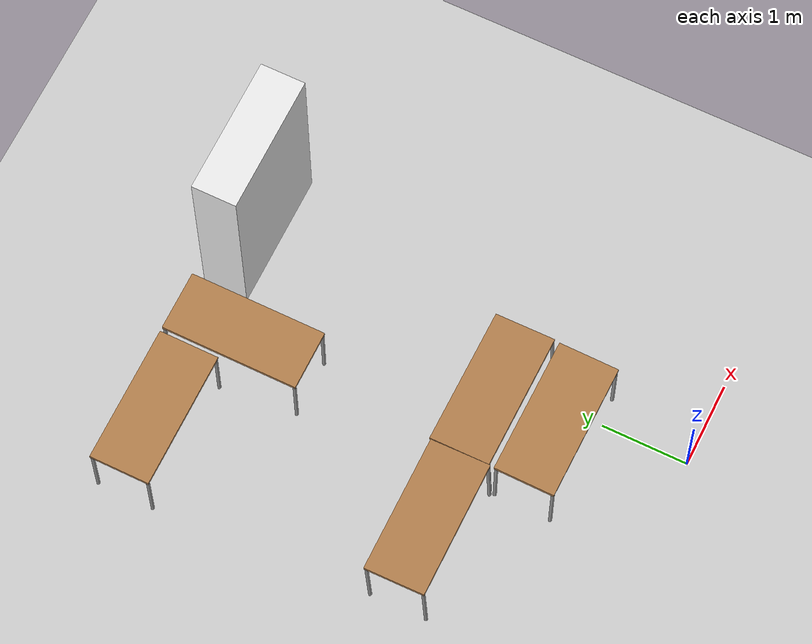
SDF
<sdf version="1.6">
 <world name="Clf Furnished">
  <model name="ground_plane">
   <static>1</static>
   <link name="link">
    <collision name="collision">
     <geometry><plane><normal>0 0 1</normal><size>100 100</size></plane></geometry>
     <surface><friction><ode><mu>100</mu><mu2>50</mu2></ode></friction></surface>
    </collision>
    <visual name="visual">
     <cast_shadows>0</cast_shadows>
     <geometry><plane><normal>0 0 1</normal><size>100 100</size></plane></geometry>
     <material>
      <script><uri>file://media/materials/scripts/gazebo.material</uri><name>Gazebo/Grey</name></script>
     </material>
    </visual>
   </link>
  </model>
  <model name="table_mod_2">
   <link name="link">
    <inertial>
     <inertia><ixx>1</ixx><ixy>0</ixy><ixz>0</ixz><iyy>1</iyy><iyz>0</iyz><izz>1</izz></inertia>
     <mass>1</mass>
    </inertial>
    <visual name="visual1">
     <pose>0 0 0.8 0 -0 0</pose>
     <geometry><box><size>1.6 0.7 0.04</size></box></geometry>
     <material>
      <script><uri>file://media/materials/scripts/gazebo.material</uri><name>Gazebo/Wood</name></script>
      <ambient>1 1 1 1</ambient>
      <diffuse>1 1 1 1</diffuse>
      <specular>0.2 0.2 0.2 1</specular>
      <emissive>0 0 0 1</emissive>
     </material>
    </visual>
    <visual name="front_right_leg">
     <pose>0.78 -0.33 0.4 0 -0 0</pose>
     <geometry><cylinder><radius>0.02</radius><length>0.8</length></cylinder></geometry>
     <material>
      <script><uri>file://media/materials/scripts/gazebo.material</uri><name>Gazebo/Grey</name></script>
      <ambient>0.3 0.3 0.3 1</ambient>
      <diffuse>0.7 0.7 0.7 1</diffuse>
      <specular>0.01 0.01 0.01 1</specular>
      <emissive>0 0 0 1</emissive>
     </material>
    </visual>
    <visual name="front_left_leg">
     <pose>0.78 0.33 0.4 0 -0 0</pose>
     <geometry><cylinder><radius>0.02</radius><length>0.8</length></cylinder></geometry>
     <material>
      <script><uri>file://media/materials/scripts/gazebo.material</uri><name>Gazebo/Grey</name></script>
      <ambient>0.3 0.3 0.3 1</ambient>
      <diffuse>0.7 0.7 0.7 1</diffuse>
      <specular>0.01 0.01 0.01 1</specular>
      <emissive>0 0 0 1</emissive>
     </material>
    </visual>
    <visual name="back_left_leg">
     <pose>-0.78 0.33 0.4 0 -0 0</pose>
     <geometry><cylinder><radius>0.02</radius><length>0.8</length></cylinder></geometry>
     <material>
      <script><uri>file://media/materials/scripts/gazebo.material</uri><name>Gazebo/Grey</name></script>
      <ambient>0.3 0.3 0.3 1</ambient>
      <diffuse>0.7 0.7 0.7 1</diffuse>
      <specular>0.01 0.01 0.01 1</specular>
      <emissive>0 0 0 1</emissive>
     </material>
    </visual>
    <visual name="back_right_leg">
     <pose>-0.78 -0.33 0.4 0 -0 0</pose>
     <geometry><cylinder><radius>0.02</radius><length>0.8</length></cylinder></geometry>
     <material>
      <script><uri>file://media/materials/scripts/gazebo.material</uri><name>Gazebo/Grey</name></script>
      <ambient>0.3 0.3 0.3 1</ambient>
      <diffuse>0.7 0.7 0.7 1</diffuse>
      <specular>0.01 0.01 0.01 1</specular>
      <emissive>0 0 0 1</emissive>
     </material>
    </visual>
    <collision name="surface">
     <pose>0 0 0.8 0 -0 0</pose>
     <geometry><box><size>1.6 0.7 0.03</size></box></geometry>
     <surface>
      <friction>
       <ode><mu>0.6</mu><mu2>0.6</mu2><fdir1>0 0 0</fdir1><slip1>0</slip1><slip2>0</slip2></ode>
       <torsional>
        <coefficient>1</coefficient>
        <patch_radius>0</patch_radius>
        <surface_radius>0</surface_radius>
        <use_patch_radius>1</use_patch_radius>
        <ode><slip>0</slip></ode>
       </torsional>
      </friction>
      <bounce><restitution_coefficient>0</restitution_coefficient><threshold>1e+06</threshold></bounce>
      <contact>
       <collide_without_contact>0</collide_without_contact>
       <collide_without_contact_bitmask>1</collide_without_contact_bitmask>
       <collide_bitmask>1</collide_bitmask>
       <ode>
        <soft_cfm>0</soft_cfm>
        <soft_erp>0.2</soft_erp>
        <kp>1e+13</kp>
        <kd>1</kd>
        <max_vel>0.01</max_vel>
        <min_depth>0</min_depth>
       </ode>
       <bullet>
        <split_impulse>1</split_impulse>
        <split_impulse_penetration_threshold>-0.01</split_impulse_penetration_threshold>
        <soft_cfm>0</soft_cfm>
        <soft_erp>0.2</soft_erp>
        <kp>1e+13</kp>
        <kd>1</kd>
       </bullet>
      </contact>
     </surface>
    </collision>
    <collision name="front_left_leg">
     <pose>0.78 0.33 0.4 0 -0 0</pose>
     <geometry><cylinder><radius>0.02</radius><length>0.8</length></cylinder></geometry>
     <surface>
      <friction>
       <ode><mu>1</mu><mu2>1</mu2><fdir1>0 0 0</fdir1><slip1>0</slip1><slip2>0</slip2></ode>
       <torsional>
        <coefficient>1</coefficient>
        <patch_radius>0</patch_radius>
        <surface_radius>0</surface_radius>
        <use_patch_radius>1</use_patch_radius>
        <ode><slip>0</slip></ode>
       </torsional>
      </friction>
      <bounce><restitution_coefficient>0</restitution_coefficient><threshold>1e+06</threshold></bounce>
      <contact>
       <collide_without_contact>0</collide_without_contact>
       <collide_without_contact_bitmask>1</collide_without_contact_bitmask>
       <collide_bitmask>1</collide_bitmask>
       <ode>
        <soft_cfm>0</soft_cfm>
        <soft_erp>0.2</soft_erp>
        <kp>1e+13</kp>
        <kd>1</kd>
        <max_vel>0.01</max_vel>
        <min_depth>0</min_depth>
       </ode>
       <bullet>
        <split_impulse>1</split_impulse>
        <split_impulse_penetration_threshold>-0.01</split_impulse_penetration_threshold>
        <soft_cfm>0</soft_cfm>
        <soft_erp>0.2</soft_erp>
        <kp>1e+13</kp>
        <kd>1</kd>
       </bullet>
      </contact>
     </surface>
    </collision>
    <collision name="front_right_leg">
     <pose>0.78 -0.33 0.4 0 -0 0</pose>
     <geometry><cylinder><radius>0.02</radius><length>0.8</length></cylinder></geometry>
     <surface>
      <friction>
       <ode><mu>1</mu><mu2>1</mu2><fdir1>0 0 0</fdir1><slip1>0</slip1><slip2>0</slip2></ode>
       <torsional>
        <coefficient>1</coefficient>
        <patch_radius>0</patch_radius>
        <surface_radius>0</surface_radius>
        <use_patch_radius>1</use_patch_radius>
        <ode><slip>0</slip></ode>
       </torsional>
      </friction>
      <bounce><restitution_coefficient>0</restitution_coefficient><threshold>1e+06</threshold></bounce>
      <contact>
       <collide_without_contact>0</collide_without_contact>
       <collide_without_contact_bitmask>1</collide_without_contact_bitmask>
       <collide_bitmask>1</collide_bitmask>
       <ode>
        <soft_cfm>0</soft_cfm>
        <soft_erp>0.2</soft_erp>
        <kp>1e+13</kp>
        <kd>1</kd>
        <max_vel>0.01</max_vel>
        <min_depth>0</min_depth>
       </ode>
       <bullet>
        <split_impulse>1</split_impulse>
        <split_impulse_penetration_threshold>-0.01</split_impulse_penetration_threshold>
        <soft_cfm>0</soft_cfm>
        <soft_erp>0.2</soft_erp>
        <kp>1e+13</kp>
        <kd>1</kd>
       </bullet>
      </contact>
     </surface>
    </collision>
    <collision name="back_right_leg">
     <pose>-0.78 -0.33 0.4 0 -0 0</pose>
     <geometry><cylinder><radius>0.02</radius><length>0.8</length></cylinder></geometry>
     <surface>
      <friction>
       <ode><mu>1</mu><mu2>1</mu2><fdir1>0 0 0</fdir1><slip1>0</slip1><slip2>0</slip2></ode>
       <torsional>
        <coefficient>1</coefficient>
        <patch_radius>0</patch_radius>
        <surface_radius>0</surface_radius>
        <use_patch_radius>1</use_patch_radius>
        <ode><slip>0</slip></ode>
       </torsional>
      </friction>
      <bounce><restitution_coefficient>0</restitution_coefficient><threshold>1e+06</threshold></bounce>
      <contact>
       <collide_without_contact>0</collide_without_contact>
       <collide_without_contact_bitmask>1</collide_without_contact_bitmask>
       <collide_bitmask>1</collide_bitmask>
       <ode>
        <soft_cfm>0</soft_cfm>
        <soft_erp>0.2</soft_erp>
        <kp>1e+13</kp>
        <kd>1</kd>
        <max_vel>0.01</max_vel>
        <min_depth>0</min_depth>
       </ode>
       <bullet>
        <split_impulse>1</split_impulse>
        <split_impulse_penetration_threshold>-0.01</split_impulse_penetration_threshold>
        <soft_cfm>0</soft_cfm>
        <soft_erp>0.2</soft_erp>
        <kp>1e+13</kp>
        <kd>1</kd>
       </bullet>
      </contact>
     </surface>
    </collision>
    <collision name="back_left_leg">
     <pose>-0.78 0.33 0.4 0 -0 0</pose>
     <geometry><cylinder><radius>0.02</radius><length>0.8</length></cylinder></geometry>
     <surface>
      <friction>
       <ode><mu>1</mu><mu2>1</mu2><fdir1>0 0 0</fdir1><slip1>0</slip1><slip2>0</slip2></ode>
       <torsional>
        <coefficient>1</coefficient>
        <patch_radius>0</patch_radius>
        <surface_radius>0</surface_radius>
        <use_patch_radius>1</use_patch_radius>
        <ode><slip>0</slip></ode>
       </torsional>
      </friction>
      <bounce><restitution_coefficient>0</restitution_coefficient><threshold>1e+06</threshold></bounce>
      <contact>
       <collide_without_contact>0</collide_without_contact>
       <collide_without_contact_bitmask>1</collide_without_contact_bitmask>
       <collide_bitmask>1</collide_bitmask>
       <ode>
        <soft_cfm>0</soft_cfm>
        <soft_erp>0.2</soft_erp>
        <kp>1e+13</kp>
        <kd>1</kd>
        <max_vel>0.01</max_vel>
        <min_depth>0</min_depth>
       </ode>
       <bullet>
        <split_impulse>1</split_impulse>
        <split_impulse_penetration_threshold>-0.01</split_impulse_penetration_threshold>
        <soft_cfm>0</soft_cfm>
        <soft_erp>0.2</soft_erp>
        <kp>1e+13</kp>
        <kd>1</kd>
       </bullet>
      </contact>
     </surface>
    </collision>
   </link>
   <static>0</static>
   <pose>-0.44786 1.38044 -9e-06 -0 2e-06 -0.011233</pose>
  </model>
  <model name="table_mod_3">
   <link name="link">
    <inertial>
     <inertia><ixx>1</ixx><ixy>0</ixy><ixz>0</ixz><iyy>1</iyy><iyz>0</iyz><izz>1</izz></inertia>
     <mass>1</mass>
    </inertial>
    <visual name="visual1">
     <pose>0 0 0.8 0 -0 0</pose>
     <geometry><box><size>1.6 0.7 0.04</size></box></geometry>
     <material>
      <script><uri>file://media/materials/scripts/gazebo.material</uri><name>Gazebo/Wood</name></script>
      <ambient>1 1 1 1</ambient>
      <diffuse>1 1 1 1</diffuse>
      <specular>0.2 0.2 0.2 1</specular>
      <emissive>0 0 0 1</emissive>
     </material>
    </visual>
    <visual name="front_right_leg">
     <pose>0.78 -0.33 0.4 0 -0 0</pose>
     <geometry><cylinder><radius>0.02</radius><length>0.8</length></cylinder></geometry>
     <material>
      <script><uri>file://media/materials/scripts/gazebo.material</uri><name>Gazebo/Grey</name></script>
      <ambient>0.3 0.3 0.3 1</ambient>
      <diffuse>0.7 0.7 0.7 1</diffuse>
      <specular>0.01 0.01 0.01 1</specular>
      <emissive>0 0 0 1</emissive>
     </material>
    </visual>
    <visual name="front_left_leg">
     <pose>0.78 0.33 0.4 0 -0 0</pose>
     <geometry><cylinder><radius>0.02</radius><length>0.8</length></cylinder></geometry>
     <material>
      <script><uri>file://media/materials/scripts/gazebo.material</uri><name>Gazebo/Grey</name></script>
      <ambient>0.3 0.3 0.3 1</ambient>
      <diffuse>0.7 0.7 0.7 1</diffuse>
      <specular>0.01 0.01 0.01 1</specular>
      <emissive>0 0 0 1</emissive>
     </material>
    </visual>
    <visual name="back_left_leg">
     <pose>-0.78 0.33 0.4 0 -0 0</pose>
     <geometry><cylinder><radius>0.02</radius><length>0.8</length></cylinder></geometry>
     <material>
      <script><uri>file://media/materials/scripts/gazebo.material</uri><name>Gazebo/Grey</name></script>
      <ambient>0.3 0.3 0.3 1</ambient>
      <diffuse>0.7 0.7 0.7 1</diffuse>
      <specular>0.01 0.01 0.01 1</specular>
      <emissive>0 0 0 1</emissive>
     </material>
    </visual>
    <visual name="back_right_leg">
     <pose>-0.78 -0.33 0.4 0 -0 0</pose>
     <geometry><cylinder><radius>0.02</radius><length>0.8</length></cylinder></geometry>
     <material>
      <script><uri>file://media/materials/scripts/gazebo.material</uri><name>Gazebo/Grey</name></script>
      <ambient>0.3 0.3 0.3 1</ambient>
      <diffuse>0.7 0.7 0.7 1</diffuse>
      <specular>0.01 0.01 0.01 1</specular>
      <emissive>0 0 0 1</emissive>
     </material>
    </visual>
    <collision name="surface">
     <pose>0 0 0.8 0 -0 0</pose>
     <geometry><box><size>1.6 0.7 0.03</size></box></geometry>
     <surface>
      <friction>
       <ode><mu>0.6</mu><mu2>0.6</mu2><fdir1>0 0 0</fdir1><slip1>0</slip1><slip2>0</slip2></ode>
       <torsional>
        <coefficient>1</coefficient>
        <patch_radius>0</patch_radius>
        <surface_radius>0</surface_radius>
        <use_patch_radius>1</use_patch_radius>
        <ode><slip>0</slip></ode>
       </torsional>
      </friction>
      <bounce><restitution_coefficient>0</restitution_coefficient><threshold>1e+06</threshold></bounce>
      <contact>
       <collide_without_contact>0</collide_without_contact>
       <collide_without_contact_bitmask>1</collide_without_contact_bitmask>
       <collide_bitmask>1</collide_bitmask>
       <ode>
        <soft_cfm>0</soft_cfm>
        <soft_erp>0.2</soft_erp>
        <kp>1e+13</kp>
        <kd>1</kd>
        <max_vel>0.01</max_vel>
        <min_depth>0</min_depth>
       </ode>
       <bullet>
        <split_impulse>1</split_impulse>
        <split_impulse_penetration_threshold>-0.01</split_impulse_penetration_threshold>
        <soft_cfm>0</soft_cfm>
        <soft_erp>0.2</soft_erp>
        <kp>1e+13</kp>
        <kd>1</kd>
       </bullet>
      </contact>
     </surface>
    </collision>
    <collision name="front_left_leg">
     <pose>0.78 0.33 0.4 0 -0 0</pose>
     <geometry><cylinder><radius>0.02</radius><length>0.8</length></cylinder></geometry>
     <surface>
      <friction>
       <ode><mu>1</mu><mu2>1</mu2><fdir1>0 0 0</fdir1><slip1>0</slip1><slip2>0</slip2></ode>
       <torsional>
        <coefficient>1</coefficient>
        <patch_radius>0</patch_radius>
        <surface_radius>0</surface_radius>
        <use_patch_radius>1</use_patch_radius>
        <ode><slip>0</slip></ode>
       </torsional>
      </friction>
      <bounce><restitution_coefficient>0</restitution_coefficient><threshold>1e+06</threshold></bounce>
      <contact>
       <collide_without_contact>0</collide_without_contact>
       <collide_without_contact_bitmask>1</collide_without_contact_bitmask>
       <collide_bitmask>1</collide_bitmask>
       <ode>
        <soft_cfm>0</soft_cfm>
        <soft_erp>0.2</soft_erp>
        <kp>1e+13</kp>
        <kd>1</kd>
        <max_vel>0.01</max_vel>
        <min_depth>0</min_depth>
       </ode>
       <bullet>
        <split_impulse>1</split_impulse>
        <split_impulse_penetration_threshold>-0.01</split_impulse_penetration_threshold>
        <soft_cfm>0</soft_cfm>
        <soft_erp>0.2</soft_erp>
        <kp>1e+13</kp>
        <kd>1</kd>
       </bullet>
      </contact>
     </surface>
    </collision>
    <collision name="front_right_leg">
     <pose>0.78 -0.33 0.4 0 -0 0</pose>
     <geometry><cylinder><radius>0.02</radius><length>0.8</length></cylinder></geometry>
     <surface>
      <friction>
       <ode><mu>1</mu><mu2>1</mu2><fdir1>0 0 0</fdir1><slip1>0</slip1><slip2>0</slip2></ode>
       <torsional>
        <coefficient>1</coefficient>
        <patch_radius>0</patch_radius>
        <surface_radius>0</surface_radius>
        <use_patch_radius>1</use_patch_radius>
        <ode><slip>0</slip></ode>
       </torsional>
      </friction>
      <bounce><restitution_coefficient>0</restitution_coefficient><threshold>1e+06</threshold></bounce>
      <contact>
       <collide_without_contact>0</collide_without_contact>
       <collide_without_contact_bitmask>1</collide_without_contact_bitmask>
       <collide_bitmask>1</collide_bitmask>
       <ode>
        <soft_cfm>0</soft_cfm>
        <soft_erp>0.2</soft_erp>
        <kp>1e+13</kp>
        <kd>1</kd>
        <max_vel>0.01</max_vel>
        <min_depth>0</min_depth>
       </ode>
       <bullet>
        <split_impulse>1</split_impulse>
        <split_impulse_penetration_threshold>-0.01</split_impulse_penetration_threshold>
        <soft_cfm>0</soft_cfm>
        <soft_erp>0.2</soft_erp>
        <kp>1e+13</kp>
        <kd>1</kd>
       </bullet>
      </contact>
     </surface>
    </collision>
    <collision name="back_right_leg">
     <pose>-0.78 -0.33 0.4 0 -0 0</pose>
     <geometry><cylinder><radius>0.02</radius><length>0.8</length></cylinder></geometry>
     <surface>
      <friction>
       <ode><mu>1</mu><mu2>1</mu2><fdir1>0 0 0</fdir1><slip1>0</slip1><slip2>0</slip2></ode>
       <torsional>
        <coefficient>1</coefficient>
        <patch_radius>0</patch_radius>
        <surface_radius>0</surface_radius>
        <use_patch_radius>1</use_patch_radius>
        <ode><slip>0</slip></ode>
       </torsional>
      </friction>
      <bounce><restitution_coefficient>0</restitution_coefficient><threshold>1e+06</threshold></bounce>
      <contact>
       <collide_without_contact>0</collide_without_contact>
       <collide_without_contact_bitmask>1</collide_without_contact_bitmask>
       <collide_bitmask>1</collide_bitmask>
       <ode>
        <soft_cfm>0</soft_cfm>
        <soft_erp>0.2</soft_erp>
        <kp>1e+13</kp>
        <kd>1</kd>
        <max_vel>0.01</max_vel>
        <min_depth>0</min_depth>
       </ode>
       <bullet>
        <split_impulse>1</split_impulse>
        <split_impulse_penetration_threshold>-0.01</split_impulse_penetration_threshold>
        <soft_cfm>0</soft_cfm>
        <soft_erp>0.2</soft_erp>
        <kp>1e+13</kp>
        <kd>1</kd>
       </bullet>
      </contact>
     </surface>
    </collision>
    <collision name="back_left_leg">
     <pose>-0.78 0.33 0.4 0 -0 0</pose>
     <geometry><cylinder><radius>0.02</radius><length>0.8</length></cylinder></geometry>
     <surface>
      <friction>
       <ode><mu>1</mu><mu2>1</mu2><fdir1>0 0 0</fdir1><slip1>0</slip1><slip2>0</slip2></ode>
       <torsional>
        <coefficient>1</coefficient>
        <patch_radius>0</patch_radius>
        <surface_radius>0</surface_radius>
        <use_patch_radius>1</use_patch_radius>
        <ode><slip>0</slip></ode>
       </torsional>
      </friction>
      <bounce><restitution_coefficient>0</restitution_coefficient><threshold>1e+06</threshold></bounce>
      <contact>
       <collide_without_contact>0</collide_without_contact>
       <collide_without_contact_bitmask>1</collide_without_contact_bitmask>
       <collide_bitmask>1</collide_bitmask>
       <ode>
        <soft_cfm>0</soft_cfm>
        <soft_erp>0.2</soft_erp>
        <kp>1e+13</kp>
        <kd>1</kd>
        <max_vel>0.01</max_vel>
        <min_depth>0</min_depth>
       </ode>
       <bullet>
        <split_impulse>1</split_impulse>
        <split_impulse_penetration_threshold>-0.01</split_impulse_penetration_threshold>
        <soft_cfm>0</soft_cfm>
        <soft_erp>0.2</soft_erp>
        <kp>1e+13</kp>
        <kd>1</kd>
       </bullet>
      </contact>
     </surface>
    </collision>
   </link>
   <static>0</static>
   <pose>-2.04329 2.094 0.015322 -0.043748 -3.1e-05 -0.000655</pose>
  </model>
  <model name="table_mod_4">
   <link name="link">
    <inertial>
     <inertia><ixx>1</ixx><ixy>0</ixy><ixz>0</ixz><iyy>1</iyy><iyz>0</iyz><izz>1</izz></inertia>
     <mass>1</mass>
    </inertial>
    <visual name="visual1">
     <pose>0 0 0.8 0 -0 0</pose>
     <geometry><box><size>1.6 0.7 0.04</size></box></geometry>
     <material>
      <script><uri>file://media/materials/scripts/gazebo.material</uri><name>Gazebo/Wood</name></script>
      <ambient>1 1 1 1</ambient>
      <diffuse>1 1 1 1</diffuse>
      <specular>0.2 0.2 0.2 1</specular>
      <emissive>0 0 0 1</emissive>
     </material>
    </visual>
    <visual name="front_right_leg">
     <pose>0.78 -0.33 0.4 0 -0 0</pose>
     <geometry><cylinder><radius>0.02</radius><length>0.8</length></cylinder></geometry>
     <material>
      <script><uri>file://media/materials/scripts/gazebo.material</uri><name>Gazebo/Grey</name></script>
      <ambient>0.3 0.3 0.3 1</ambient>
      <diffuse>0.7 0.7 0.7 1</diffuse>
      <specular>0.01 0.01 0.01 1</specular>
      <emissive>0 0 0 1</emissive>
     </material>
    </visual>
    <visual name="front_left_leg">
     <pose>0.78 0.33 0.4 0 -0 0</pose>
     <geometry><cylinder><radius>0.02</radius><length>0.8</length></cylinder></geometry>
     <material>
      <script><uri>file://media/materials/scripts/gazebo.material</uri><name>Gazebo/Grey</name></script>
      <ambient>0.3 0.3 0.3 1</ambient>
      <diffuse>0.7 0.7 0.7 1</diffuse>
      <specular>0.01 0.01 0.01 1</specular>
      <emissive>0 0 0 1</emissive>
     </material>
    </visual>
    <visual name="back_left_leg">
     <pose>-0.78 0.33 0.4 0 -0 0</pose>
     <geometry><cylinder><radius>0.02</radius><length>0.8</length></cylinder></geometry>
     <material>
      <script><uri>file://media/materials/scripts/gazebo.material</uri><name>Gazebo/Grey</name></script>
      <ambient>0.3 0.3 0.3 1</ambient>
      <diffuse>0.7 0.7 0.7 1</diffuse>
      <specular>0.01 0.01 0.01 1</specular>
      <emissive>0 0 0 1</emissive>
     </material>
    </visual>
    <visual name="back_right_leg">
     <pose>-0.78 -0.33 0.4 0 -0 0</pose>
     <geometry><cylinder><radius>0.02</radius><length>0.8</length></cylinder></geometry>
     <material>
      <script><uri>file://media/materials/scripts/gazebo.material</uri><name>Gazebo/Grey</name></script>
      <ambient>0.3 0.3 0.3 1</ambient>
      <diffuse>0.7 0.7 0.7 1</diffuse>
      <specular>0.01 0.01 0.01 1</specular>
      <emissive>0 0 0 1</emissive>
     </material>
    </visual>
    <collision name="surface">
     <pose>0 0 0.8 0 -0 0</pose>
     <geometry><box><size>1.6 0.7 0.03</size></box></geometry>
     <surface>
      <friction>
       <ode><mu>0.6</mu><mu2>0.6</mu2><fdir1>0 0 0</fdir1><slip1>0</slip1><slip2>0</slip2></ode>
       <torsional>
        <coefficient>1</coefficient>
        <patch_radius>0</patch_radius>
        <surface_radius>0</surface_radius>
        <use_patch_radius>1</use_patch_radius>
        <ode><slip>0</slip></ode>
       </torsional>
      </friction>
      <bounce><restitution_coefficient>0</restitution_coefficient><threshold>1e+06</threshold></bounce>
      <contact>
       <collide_without_contact>0</collide_without_contact>
       <collide_without_contact_bitmask>1</collide_without_contact_bitmask>
       <collide_bitmask>1</collide_bitmask>
       <ode>
        <soft_cfm>0</soft_cfm>
        <soft_erp>0.2</soft_erp>
        <kp>1e+13</kp>
        <kd>1</kd>
        <max_vel>0.01</max_vel>
        <min_depth>0</min_depth>
       </ode>
       <bullet>
        <split_impulse>1</split_impulse>
        <split_impulse_penetration_threshold>-0.01</split_impulse_penetration_threshold>
        <soft_cfm>0</soft_cfm>
        <soft_erp>0.2</soft_erp>
        <kp>1e+13</kp>
        <kd>1</kd>
       </bullet>
      </contact>
     </surface>
    </collision>
    <collision name="front_left_leg">
     <pose>0.78 0.33 0.4 0 -0 0</pose>
     <geometry><cylinder><radius>0.02</radius><length>0.8</length></cylinder></geometry>
     <surface>
      <friction>
       <ode><mu>1</mu><mu2>1</mu2><fdir1>0 0 0</fdir1><slip1>0</slip1><slip2>0</slip2></ode>
       <torsional>
        <coefficient>1</coefficient>
        <patch_radius>0</patch_radius>
        <surface_radius>0</surface_radius>
        <use_patch_radius>1</use_patch_radius>
        <ode><slip>0</slip></ode>
       </torsional>
      </friction>
      <bounce><restitution_coefficient>0</restitution_coefficient><threshold>1e+06</threshold></bounce>
      <contact>
       <collide_without_contact>0</collide_without_contact>
       <collide_without_contact_bitmask>1</collide_without_contact_bitmask>
       <collide_bitmask>1</collide_bitmask>
       <ode>
        <soft_cfm>0</soft_cfm>
        <soft_erp>0.2</soft_erp>
        <kp>1e+13</kp>
        <kd>1</kd>
        <max_vel>0.01</max_vel>
        <min_depth>0</min_depth>
       </ode>
       <bullet>
        <split_impulse>1</split_impulse>
        <split_impulse_penetration_threshold>-0.01</split_impulse_penetration_threshold>
        <soft_cfm>0</soft_cfm>
        <soft_erp>0.2</soft_erp>
        <kp>1e+13</kp>
        <kd>1</kd>
       </bullet>
      </contact>
     </surface>
    </collision>
    <collision name="front_right_leg">
     <pose>0.78 -0.33 0.4 0 -0 0</pose>
     <geometry><cylinder><radius>0.02</radius><length>0.8</length></cylinder></geometry>
     <surface>
      <friction>
       <ode><mu>1</mu><mu2>1</mu2><fdir1>0 0 0</fdir1><slip1>0</slip1><slip2>0</slip2></ode>
       <torsional>
        <coefficient>1</coefficient>
        <patch_radius>0</patch_radius>
        <surface_radius>0</surface_radius>
        <use_patch_radius>1</use_patch_radius>
        <ode><slip>0</slip></ode>
       </torsional>
      </friction>
      <bounce><restitution_coefficient>0</restitution_coefficient><threshold>1e+06</threshold></bounce>
      <contact>
       <collide_without_contact>0</collide_without_contact>
       <collide_without_contact_bitmask>1</collide_without_contact_bitmask>
       <collide_bitmask>1</collide_bitmask>
       <ode>
        <soft_cfm>0</soft_cfm>
        <soft_erp>0.2</soft_erp>
        <kp>1e+13</kp>
        <kd>1</kd>
        <max_vel>0.01</max_vel>
        <min_depth>0</min_depth>
       </ode>
       <bullet>
        <split_impulse>1</split_impulse>
        <split_impulse_penetration_threshold>-0.01</split_impulse_penetration_threshold>
        <soft_cfm>0</soft_cfm>
        <soft_erp>0.2</soft_erp>
        <kp>1e+13</kp>
        <kd>1</kd>
       </bullet>
      </contact>
     </surface>
    </collision>
    <collision name="back_right_leg">
     <pose>-0.78 -0.33 0.4 0 -0 0</pose>
     <geometry><cylinder><radius>0.02</radius><length>0.8</length></cylinder></geometry>
     <surface>
      <friction>
       <ode><mu>1</mu><mu2>1</mu2><fdir1>0 0 0</fdir1><slip1>0</slip1><slip2>0</slip2></ode>
       <torsional>
        <coefficient>1</coefficient>
        <patch_radius>0</patch_radius>
        <surface_radius>0</surface_radius>
        <use_patch_radius>1</use_patch_radius>
        <ode><slip>0</slip></ode>
       </torsional>
      </friction>
      <bounce><restitution_coefficient>0</restitution_coefficient><threshold>1e+06</threshold></bounce>
      <contact>
       <collide_without_contact>0</collide_without_contact>
       <collide_without_contact_bitmask>1</collide_without_contact_bitmask>
       <collide_bitmask>1</collide_bitmask>
       <ode>
        <soft_cfm>0</soft_cfm>
        <soft_erp>0.2</soft_erp>
        <kp>1e+13</kp>
        <kd>1</kd>
        <max_vel>0.01</max_vel>
        <min_depth>0</min_depth>
       </ode>
       <bullet>
        <split_impulse>1</split_impulse>
        <split_impulse_penetration_threshold>-0.01</split_impulse_penetration_threshold>
        <soft_cfm>0</soft_cfm>
        <soft_erp>0.2</soft_erp>
        <kp>1e+13</kp>
        <kd>1</kd>
       </bullet>
      </contact>
     </surface>
    </collision>
    <collision name="back_left_leg">
     <pose>-0.78 0.33 0.4 0 -0 0</pose>
     <geometry><cylinder><radius>0.02</radius><length>0.8</length></cylinder></geometry>
     <surface>
      <friction>
       <ode><mu>1</mu><mu2>1</mu2><fdir1>0 0 0</fdir1><slip1>0</slip1><slip2>0</slip2></ode>
       <torsional>
        <coefficient>1</coefficient>
        <patch_radius>0</patch_radius>
        <surface_radius>0</surface_radius>
        <use_patch_radius>1</use_patch_radius>
        <ode><slip>0</slip></ode>
       </torsional>
      </friction>
      <bounce><restitution_coefficient>0</restitution_coefficient><threshold>1e+06</threshold></bounce>
      <contact>
       <collide_without_contact>0</collide_without_contact>
       <collide_without_contact_bitmask>1</collide_without_contact_bitmask>
       <collide_bitmask>1</collide_bitmask>
       <ode>
        <soft_cfm>0</soft_cfm>
        <soft_erp>0.2</soft_erp>
        <kp>1e+13</kp>
        <kd>1</kd>
        <max_vel>0.01</max_vel>
        <min_depth>0</min_depth>
       </ode>
       <bullet>
        <split_impulse>1</split_impulse>
        <split_impulse_penetration_threshold>-0.01</split_impulse_penetration_threshold>
        <soft_cfm>0</soft_cfm>
        <soft_erp>0.2</soft_erp>
        <kp>1e+13</kp>
        <kd>1</kd>
       </bullet>
      </contact>
     </surface>
    </collision>
   </link>
   <static>0</static>
   <pose>-0.439441 2.10143 0.015288 -0.043723 -0 -0.011241</pose>
  </model>
  <model name="table_mod_8">
   <link name="link">
    <inertial>
     <inertia><ixx>1</ixx><ixy>0</ixy><ixz>0</ixz><iyy>1</iyy><iyz>0</iyz><izz>1</izz></inertia>
     <mass>1</mass>
    </inertial>
    <visual name="visual1">
     <pose>0 0 0.8 0 -0 0</pose>
     <geometry><box><size>1.6 0.7 0.04</size></box></geometry>
     <material>
      <script><uri>file://media/materials/scripts/gazebo.material</uri><name>Gazebo/Wood</name></script>
      <ambient>1 1 1 1</ambient>
      <diffuse>1 1 1 1</diffuse>
      <specular>0.2 0.2 0.2 1</specular>
      <emissive>0 0 0 1</emissive>
     </material>
    </visual>
    <visual name="front_right_leg">
     <pose>0.78 -0.33 0.4 0 -0 0</pose>
     <geometry><cylinder><radius>0.02</radius><length>0.8</length></cylinder></geometry>
     <material>
      <script><uri>file://media/materials/scripts/gazebo.material</uri><name>Gazebo/Grey</name></script>
      <ambient>0.3 0.3 0.3 1</ambient>
      <diffuse>0.7 0.7 0.7 1</diffuse>
      <specular>0.01 0.01 0.01 1</specular>
      <emissive>0 0 0 1</emissive>
     </material>
    </visual>
    <visual name="front_left_leg">
     <pose>0.78 0.33 0.4 0 -0 0</pose>
     <geometry><cylinder><radius>0.02</radius><length>0.8</length></cylinder></geometry>
     <material>
      <script><uri>file://media/materials/scripts/gazebo.material</uri><name>Gazebo/Grey</name></script>
      <ambient>0.3 0.3 0.3 1</ambient>
      <diffuse>0.7 0.7 0.7 1</diffuse>
      <specular>0.01 0.01 0.01 1</specular>
      <emissive>0 0 0 1</emissive>
     </material>
    </visual>
    <visual name="back_left_leg">
     <pose>-0.78 0.33 0.4 0 -0 0</pose>
     <geometry><cylinder><radius>0.02</radius><length>0.8</length></cylinder></geometry>
     <material>
      <script><uri>file://media/materials/scripts/gazebo.material</uri><name>Gazebo/Grey</name></script>
      <ambient>0.3 0.3 0.3 1</ambient>
      <diffuse>0.7 0.7 0.7 1</diffuse>
      <specular>0.01 0.01 0.01 1</specular>
      <emissive>0 0 0 1</emissive>
     </material>
    </visual>
    <visual name="back_right_leg">
     <pose>-0.78 -0.33 0.4 0 -0 0</pose>
     <geometry><cylinder><radius>0.02</radius><length>0.8</length></cylinder></geometry>
     <material>
      <script><uri>file://media/materials/scripts/gazebo.material</uri><name>Gazebo/Grey</name></script>
      <ambient>0.3 0.3 0.3 1</ambient>
      <diffuse>0.7 0.7 0.7 1</diffuse>
      <specular>0.01 0.01 0.01 1</specular>
      <emissive>0 0 0 1</emissive>
     </material>
    </visual>
    <collision name="surface">
     <pose>0 0 0.8 0 -0 0</pose>
     <geometry><box><size>1.6 0.7 0.03</size></box></geometry>
     <surface>
      <friction>
       <ode><mu>0.6</mu><mu2>0.6</mu2><fdir1>0 0 0</fdir1><slip1>0</slip1><slip2>0</slip2></ode>
       <torsional>
        <coefficient>1</coefficient>
        <patch_radius>0</patch_radius>
        <surface_radius>0</surface_radius>
        <use_patch_radius>1</use_patch_radius>
        <ode><slip>0</slip></ode>
       </torsional>
      </friction>
      <bounce><restitution_coefficient>0</restitution_coefficient><threshold>1e+06</threshold></bounce>
      <contact>
       <collide_without_contact>0</collide_without_contact>
       <collide_without_contact_bitmask>1</collide_without_contact_bitmask>
       <collide_bitmask>1</collide_bitmask>
       <ode>
        <soft_cfm>0</soft_cfm>
        <soft_erp>0.2</soft_erp>
        <kp>1e+13</kp>
        <kd>1</kd>
        <max_vel>0.01</max_vel>
        <min_depth>0</min_depth>
       </ode>
       <bullet>
        <split_impulse>1</split_impulse>
        <split_impulse_penetration_threshold>-0.01</split_impulse_penetration_threshold>
        <soft_cfm>0</soft_cfm>
        <soft_erp>0.2</soft_erp>
        <kp>1e+13</kp>
        <kd>1</kd>
       </bullet>
      </contact>
     </surface>
    </collision>
    <collision name="front_left_leg">
     <pose>0.78 0.33 0.4 0 -0 0</pose>
     <geometry><cylinder><radius>0.02</radius><length>0.8</length></cylinder></geometry>
     <surface>
      <friction>
       <ode><mu>1</mu><mu2>1</mu2><fdir1>0 0 0</fdir1><slip1>0</slip1><slip2>0</slip2></ode>
       <torsional>
        <coefficient>1</coefficient>
        <patch_radius>0</patch_radius>
        <surface_radius>0</surface_radius>
        <use_patch_radius>1</use_patch_radius>
        <ode><slip>0</slip></ode>
       </torsional>
      </friction>
      <bounce><restitution_coefficient>0</restitution_coefficient><threshold>1e+06</threshold></bounce>
      <contact>
       <collide_without_contact>0</collide_without_contact>
       <collide_without_contact_bitmask>1</collide_without_contact_bitmask>
       <collide_bitmask>1</collide_bitmask>
       <ode>
        <soft_cfm>0</soft_cfm>
        <soft_erp>0.2</soft_erp>
        <kp>1e+13</kp>
        <kd>1</kd>
        <max_vel>0.01</max_vel>
        <min_depth>0</min_depth>
       </ode>
       <bullet>
        <split_impulse>1</split_impulse>
        <split_impulse_penetration_threshold>-0.01</split_impulse_penetration_threshold>
        <soft_cfm>0</soft_cfm>
        <soft_erp>0.2</soft_erp>
        <kp>1e+13</kp>
        <kd>1</kd>
       </bullet>
      </contact>
     </surface>
    </collision>
    <collision name="front_right_leg">
     <pose>0.78 -0.33 0.4 0 -0 0</pose>
     <geometry><cylinder><radius>0.02</radius><length>0.8</length></cylinder></geometry>
     <surface>
      <friction>
       <ode><mu>1</mu><mu2>1</mu2><fdir1>0 0 0</fdir1><slip1>0</slip1><slip2>0</slip2></ode>
       <torsional>
        <coefficient>1</coefficient>
        <patch_radius>0</patch_radius>
        <surface_radius>0</surface_radius>
        <use_patch_radius>1</use_patch_radius>
        <ode><slip>0</slip></ode>
       </torsional>
      </friction>
      <bounce><restitution_coefficient>0</restitution_coefficient><threshold>1e+06</threshold></bounce>
      <contact>
       <collide_without_contact>0</collide_without_contact>
       <collide_without_contact_bitmask>1</collide_without_contact_bitmask>
       <collide_bitmask>1</collide_bitmask>
       <ode>
        <soft_cfm>0</soft_cfm>
        <soft_erp>0.2</soft_erp>
        <kp>1e+13</kp>
        <kd>1</kd>
        <max_vel>0.01</max_vel>
        <min_depth>0</min_depth>
       </ode>
       <bullet>
        <split_impulse>1</split_impulse>
        <split_impulse_penetration_threshold>-0.01</split_impulse_penetration_threshold>
        <soft_cfm>0</soft_cfm>
        <soft_erp>0.2</soft_erp>
        <kp>1e+13</kp>
        <kd>1</kd>
       </bullet>
      </contact>
     </surface>
    </collision>
    <collision name="back_right_leg">
     <pose>-0.78 -0.33 0.4 0 -0 0</pose>
     <geometry><cylinder><radius>0.02</radius><length>0.8</length></cylinder></geometry>
     <surface>
      <friction>
       <ode><mu>1</mu><mu2>1</mu2><fdir1>0 0 0</fdir1><slip1>0</slip1><slip2>0</slip2></ode>
       <torsional>
        <coefficient>1</coefficient>
        <patch_radius>0</patch_radius>
        <surface_radius>0</surface_radius>
        <use_patch_radius>1</use_patch_radius>
        <ode><slip>0</slip></ode>
       </torsional>
      </friction>
      <bounce><restitution_coefficient>0</restitution_coefficient><threshold>1e+06</threshold></bounce>
      <contact>
       <collide_without_contact>0</collide_without_contact>
       <collide_without_contact_bitmask>1</collide_without_contact_bitmask>
       <collide_bitmask>1</collide_bitmask>
       <ode>
        <soft_cfm>0</soft_cfm>
        <soft_erp>0.2</soft_erp>
        <kp>1e+13</kp>
        <kd>1</kd>
        <max_vel>0.01</max_vel>
        <min_depth>0</min_depth>
       </ode>
       <bullet>
        <split_impulse>1</split_impulse>
        <split_impulse_penetration_threshold>-0.01</split_impulse_penetration_threshold>
        <soft_cfm>0</soft_cfm>
        <soft_erp>0.2</soft_erp>
        <kp>1e+13</kp>
        <kd>1</kd>
       </bullet>
      </contact>
     </surface>
    </collision>
    <collision name="back_left_leg">
     <pose>-0.78 0.33 0.4 0 -0 0</pose>
     <geometry><cylinder><radius>0.02</radius><length>0.8</length></cylinder></geometry>
     <surface>
      <friction>
       <ode><mu>1</mu><mu2>1</mu2><fdir1>0 0 0</fdir1><slip1>0</slip1><slip2>0</slip2></ode>
       <torsional>
        <coefficient>1</coefficient>
        <patch_radius>0</patch_radius>
        <surface_radius>0</surface_radius>
        <use_patch_radius>1</use_patch_radius>
        <ode><slip>0</slip></ode>
       </torsional>
      </friction>
      <bounce><restitution_coefficient>0</restitution_coefficient><threshold>1e+06</threshold></bounce>
      <contact>
       <collide_without_contact>0</collide_without_contact>
       <collide_without_contact_bitmask>1</collide_without_contact_bitmask>
       <collide_bitmask>1</collide_bitmask>
       <ode>
        <soft_cfm>0</soft_cfm>
        <soft_erp>0.2</soft_erp>
        <kp>1e+13</kp>
        <kd>1</kd>
        <max_vel>0.01</max_vel>
        <min_depth>0</min_depth>
       </ode>
       <bullet>
        <split_impulse>1</split_impulse>
        <split_impulse_penetration_threshold>-0.01</split_impulse_penetration_threshold>
        <soft_cfm>0</soft_cfm>
        <soft_erp>0.2</soft_erp>
        <kp>1e+13</kp>
        <kd>1</kd>
       </bullet>
      </contact>
     </surface>
    </collision>
   </link>
   <static>0</static>
   <pose>-2.19151 5.28189 0.001845 0.005271 -0 0</pose>
  </model>
  <model name="table_mod_9">
   <link name="link">
    <inertial>
     <inertia><ixx>1</ixx><ixy>0</ixy><ixz>0</ixz><iyy>1</iyy><iyz>0</iyz><izz>1</izz></inertia>
     <mass>1</mass>
    </inertial>
    <visual name="visual1">
     <pose>0 0 0.8 0 -0 0</pose>
     <geometry><box><size>1.6 0.7 0.04</size></box></geometry>
     <material>
      <script><uri>file://media/materials/scripts/gazebo.material</uri><name>Gazebo/Wood</name></script>
      <ambient>1 1 1 1</ambient>
      <diffuse>1 1 1 1</diffuse>
      <specular>0.2 0.2 0.2 1</specular>
      <emissive>0 0 0 1</emissive>
     </material>
    </visual>
    <visual name="front_right_leg">
     <pose>0.78 -0.33 0.4 0 -0 0</pose>
     <geometry><cylinder><radius>0.02</radius><length>0.8</length></cylinder></geometry>
     <material>
      <script><uri>file://media/materials/scripts/gazebo.material</uri><name>Gazebo/Grey</name></script>
      <ambient>0.3 0.3 0.3 1</ambient>
      <diffuse>0.7 0.7 0.7 1</diffuse>
      <specular>0.01 0.01 0.01 1</specular>
      <emissive>0 0 0 1</emissive>
     </material>
    </visual>
    <visual name="front_left_leg">
     <pose>0.78 0.33 0.4 0 -0 0</pose>
     <geometry><cylinder><radius>0.02</radius><length>0.8</length></cylinder></geometry>
     <material>
      <script><uri>file://media/materials/scripts/gazebo.material</uri><name>Gazebo/Grey</name></script>
      <ambient>0.3 0.3 0.3 1</ambient>
      <diffuse>0.7 0.7 0.7 1</diffuse>
      <specular>0.01 0.01 0.01 1</specular>
      <emissive>0 0 0 1</emissive>
     </material>
    </visual>
    <visual name="back_left_leg">
     <pose>-0.78 0.33 0.4 0 -0 0</pose>
     <geometry><cylinder><radius>0.02</radius><length>0.8</length></cylinder></geometry>
     <material>
      <script><uri>file://media/materials/scripts/gazebo.material</uri><name>Gazebo/Grey</name></script>
      <ambient>0.3 0.3 0.3 1</ambient>
      <diffuse>0.7 0.7 0.7 1</diffuse>
      <specular>0.01 0.01 0.01 1</specular>
      <emissive>0 0 0 1</emissive>
     </material>
    </visual>
    <visual name="back_right_leg">
     <pose>-0.78 -0.33 0.4 0 -0 0</pose>
     <geometry><cylinder><radius>0.02</radius><length>0.8</length></cylinder></geometry>
     <material>
      <script><uri>file://media/materials/scripts/gazebo.material</uri><name>Gazebo/Grey</name></script>
      <ambient>0.3 0.3 0.3 1</ambient>
      <diffuse>0.7 0.7 0.7 1</diffuse>
      <specular>0.01 0.01 0.01 1</specular>
      <emissive>0 0 0 1</emissive>
     </material>
    </visual>
    <collision name="surface">
     <pose>0 0 0.8 0 -0 0</pose>
     <geometry><box><size>1.6 0.7 0.03</size></box></geometry>
     <surface>
      <friction>
       <ode><mu>0.6</mu><mu2>0.6</mu2><fdir1>0 0 0</fdir1><slip1>0</slip1><slip2>0</slip2></ode>
       <torsional>
        <coefficient>1</coefficient>
        <patch_radius>0</patch_radius>
        <surface_radius>0</surface_radius>
        <use_patch_radius>1</use_patch_radius>
        <ode><slip>0</slip></ode>
       </torsional>
      </friction>
      <bounce><restitution_coefficient>0</restitution_coefficient><threshold>1e+06</threshold></bounce>
      <contact>
       <collide_without_contact>0</collide_without_contact>
       <collide_without_contact_bitmask>1</collide_without_contact_bitmask>
       <collide_bitmask>1</collide_bitmask>
       <ode>
        <soft_cfm>0</soft_cfm>
        <soft_erp>0.2</soft_erp>
        <kp>1e+13</kp>
        <kd>1</kd>
        <max_vel>0.01</max_vel>
        <min_depth>0</min_depth>
       </ode>
       <bullet>
        <split_impulse>1</split_impulse>
        <split_impulse_penetration_threshold>-0.01</split_impulse_penetration_threshold>
        <soft_cfm>0</soft_cfm>
        <soft_erp>0.2</soft_erp>
        <kp>1e+13</kp>
        <kd>1</kd>
       </bullet>
      </contact>
     </surface>
    </collision>
    <collision name="front_left_leg">
     <pose>0.78 0.33 0.4 0 -0 0</pose>
     <geometry><cylinder><radius>0.02</radius><length>0.8</length></cylinder></geometry>
     <surface>
      <friction>
       <ode><mu>1</mu><mu2>1</mu2><fdir1>0 0 0</fdir1><slip1>0</slip1><slip2>0</slip2></ode>
       <torsional>
        <coefficient>1</coefficient>
        <patch_radius>0</patch_radius>
        <surface_radius>0</surface_radius>
        <use_patch_radius>1</use_patch_radius>
        <ode><slip>0</slip></ode>
       </torsional>
      </friction>
      <bounce><restitution_coefficient>0</restitution_coefficient><threshold>1e+06</threshold></bounce>
      <contact>
       <collide_without_contact>0</collide_without_contact>
       <collide_without_contact_bitmask>1</collide_without_contact_bitmask>
       <collide_bitmask>1</collide_bitmask>
       <ode>
        <soft_cfm>0</soft_cfm>
        <soft_erp>0.2</soft_erp>
        <kp>1e+13</kp>
        <kd>1</kd>
        <max_vel>0.01</max_vel>
        <min_depth>0</min_depth>
       </ode>
       <bullet>
        <split_impulse>1</split_impulse>
        <split_impulse_penetration_threshold>-0.01</split_impulse_penetration_threshold>
        <soft_cfm>0</soft_cfm>
        <soft_erp>0.2</soft_erp>
        <kp>1e+13</kp>
        <kd>1</kd>
       </bullet>
      </contact>
     </surface>
    </collision>
    <collision name="front_right_leg">
     <pose>0.78 -0.33 0.4 0 -0 0</pose>
     <geometry><cylinder><radius>0.02</radius><length>0.8</length></cylinder></geometry>
     <surface>
      <friction>
       <ode><mu>1</mu><mu2>1</mu2><fdir1>0 0 0</fdir1><slip1>0</slip1><slip2>0</slip2></ode>
       <torsional>
        <coefficient>1</coefficient>
        <patch_radius>0</patch_radius>
        <surface_radius>0</surface_radius>
        <use_patch_radius>1</use_patch_radius>
        <ode><slip>0</slip></ode>
       </torsional>
      </friction>
      <bounce><restitution_coefficient>0</restitution_coefficient><threshold>1e+06</threshold></bounce>
      <contact>
       <collide_without_contact>0</collide_without_contact>
       <collide_without_contact_bitmask>1</collide_without_contact_bitmask>
       <collide_bitmask>1</collide_bitmask>
       <ode>
        <soft_cfm>0</soft_cfm>
        <soft_erp>0.2</soft_erp>
        <kp>1e+13</kp>
        <kd>1</kd>
        <max_vel>0.01</max_vel>
        <min_depth>0</min_depth>
       </ode>
       <bullet>
        <split_impulse>1</split_impulse>
        <split_impulse_penetration_threshold>-0.01</split_impulse_penetration_threshold>
        <soft_cfm>0</soft_cfm>
        <soft_erp>0.2</soft_erp>
        <kp>1e+13</kp>
        <kd>1</kd>
       </bullet>
      </contact>
     </surface>
    </collision>
    <collision name="back_right_leg">
     <pose>-0.78 -0.33 0.4 0 -0 0</pose>
     <geometry><cylinder><radius>0.02</radius><length>0.8</length></cylinder></geometry>
     <surface>
      <friction>
       <ode><mu>1</mu><mu2>1</mu2><fdir1>0 0 0</fdir1><slip1>0</slip1><slip2>0</slip2></ode>
       <torsional>
        <coefficient>1</coefficient>
        <patch_radius>0</patch_radius>
        <surface_radius>0</surface_radius>
        <use_patch_radius>1</use_patch_radius>
        <ode><slip>0</slip></ode>
       </torsional>
      </friction>
      <bounce><restitution_coefficient>0</restitution_coefficient><threshold>1e+06</threshold></bounce>
      <contact>
       <collide_without_contact>0</collide_without_contact>
       <collide_without_contact_bitmask>1</collide_without_contact_bitmask>
       <collide_bitmask>1</collide_bitmask>
       <ode>
        <soft_cfm>0</soft_cfm>
        <soft_erp>0.2</soft_erp>
        <kp>1e+13</kp>
        <kd>1</kd>
        <max_vel>0.01</max_vel>
        <min_depth>0</min_depth>
       </ode>
       <bullet>
        <split_impulse>1</split_impulse>
        <split_impulse_penetration_threshold>-0.01</split_impulse_penetration_threshold>
        <soft_cfm>0</soft_cfm>
        <soft_erp>0.2</soft_erp>
        <kp>1e+13</kp>
        <kd>1</kd>
       </bullet>
      </contact>
     </surface>
    </collision>
    <collision name="back_left_leg">
     <pose>-0.78 0.33 0.4 0 -0 0</pose>
     <geometry><cylinder><radius>0.02</radius><length>0.8</length></cylinder></geometry>
     <surface>
      <friction>
       <ode><mu>1</mu><mu2>1</mu2><fdir1>0 0 0</fdir1><slip1>0</slip1><slip2>0</slip2></ode>
       <torsional>
        <coefficient>1</coefficient>
        <patch_radius>0</patch_radius>
        <surface_radius>0</surface_radius>
        <use_patch_radius>1</use_patch_radius>
        <ode><slip>0</slip></ode>
       </torsional>
      </friction>
      <bounce><restitution_coefficient>0</restitution_coefficient><threshold>1e+06</threshold></bounce>
      <contact>
       <collide_without_contact>0</collide_without_contact>
       <collide_without_contact_bitmask>1</collide_without_contact_bitmask>
       <collide_bitmask>1</collide_bitmask>
       <ode>
        <soft_cfm>0</soft_cfm>
        <soft_erp>0.2</soft_erp>
        <kp>1e+13</kp>
        <kd>1</kd>
        <max_vel>0.01</max_vel>
        <min_depth>0</min_depth>
       </ode>
       <bullet>
        <split_impulse>1</split_impulse>
        <split_impulse_penetration_threshold>-0.01</split_impulse_penetration_threshold>
        <soft_cfm>0</soft_cfm>
        <soft_erp>0.2</soft_erp>
        <kp>1e+13</kp>
        <kd>1</kd>
       </bullet>
      </contact>
     </surface>
    </collision>
   </link>
   <static>0</static>
   <pose>-0.99151 4.83013 -8e-06 0 -2e-06 1.56875</pose>
  </model>
  <model name="clf_cabinet_2">
   <link name="link">
    <inertial>
     <mass>1</mass>
     <inertia>
      <ixx>0.166667</ixx>
      <ixy>0</ixy>
      <ixz>0</ixz>
      <iyy>0.166667</iyy>
      <iyz>0</iyz>
      <izz>0.166667</izz>
     </inertia>
    </inertial>
    <visual name="visual">
     <geometry><box><size>1.6 0.522097 2.4</size></box></geometry>
     <material>
      <script><name>Gazebo/White</name><uri>file://media/materials/scripts/gazebo.material</uri></script>
      <ambient>0.3 0.3 0.3 1</ambient>
      <diffuse>0.7 0.7 0.7 1</diffuse>
      <specular>0.01 0.01 0.01 1</specular>
      <emissive>0 0 0 1</emissive>
     </material>
    </visual>
    <collision name="collision">
     <geometry><box><size>1.6 0.522097 2.4</size></box></geometry>
     <surface>
      <friction>
       <ode><mu>1</mu><mu2>1</mu2><fdir1>0 0 0</fdir1><slip1>0</slip1><slip2>0</slip2></ode>
       <torsional>
        <coefficient>1</coefficient>
        <patch_radius>0</patch_radius>
        <surface_radius>0</surface_radius>
        <use_patch_radius>1</use_patch_radius>
        <ode><slip>0</slip></ode>
       </torsional>
      </friction>
      <bounce><restitution_coefficient>0</restitution_coefficient><threshold>1e+06</threshold></bounce>
      <contact>
       <collide_without_contact>0</collide_without_contact>
       <collide_without_contact_bitmask>1</collide_without_contact_bitmask>
       <collide_bitmask>1</collide_bitmask>
       <ode>
        <soft_cfm>0</soft_cfm>
        <soft_erp>0.2</soft_erp>
        <kp>1e+13</kp>
        <kd>1</kd>
        <max_vel>0.01</max_vel>
        <min_depth>0</min_depth>
       </ode>
       <bullet>
        <split_impulse>1</split_impulse>
        <split_impulse_penetration_threshold>-0.01</split_impulse_penetration_threshold>
        <soft_cfm>0</soft_cfm>
        <soft_erp>0.2</soft_erp>
        <kp>1e+13</kp>
        <kd>1</kd>
       </bullet>
      </contact>
     </surface>
    </collision>
   </link>
   <static>0</static>
   <pose>0.440696 5.41711 1.2 0 0 -0.000107</pose>
  </model>
 </world>
</sdf>
